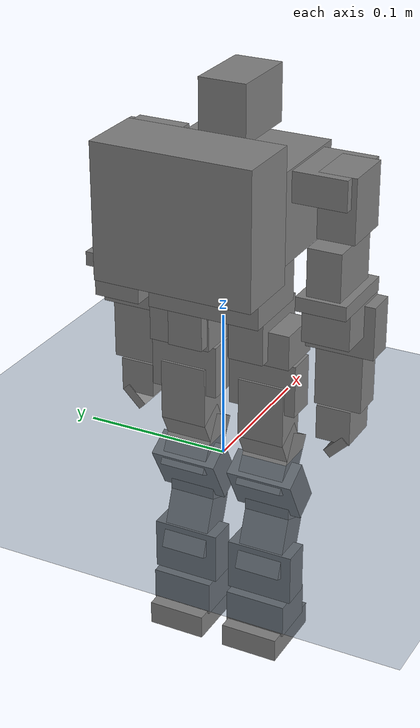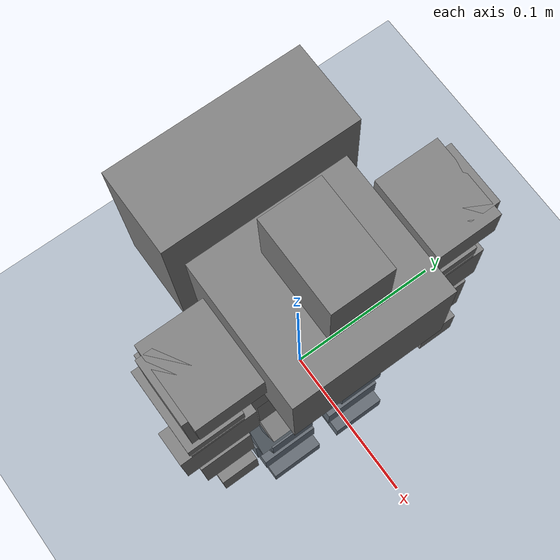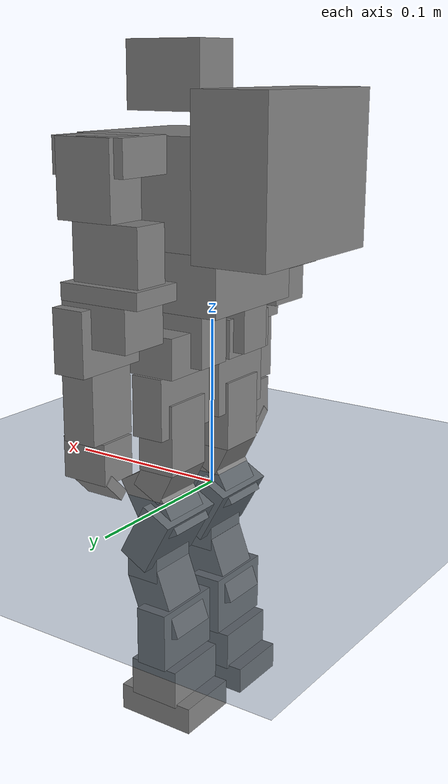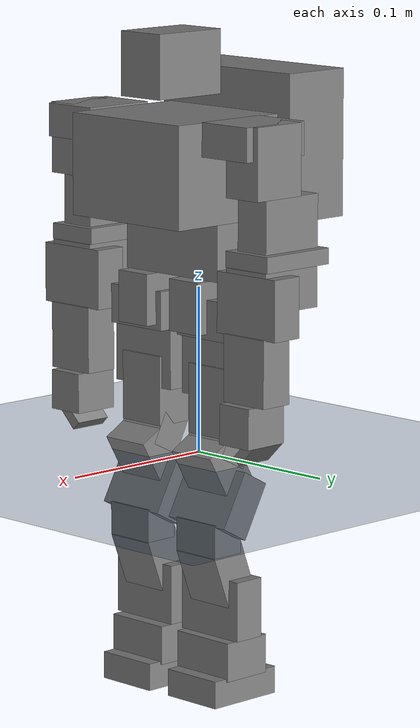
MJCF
<mujoco model="Kondo_4">

    <compiler angle="radian"/>
    <size njmax="5000" nuserdata="100" nconmax="999"/>
    <option integrator="RK4" timestep="0.001" jacobian="dense" cone="elliptic" impratio="1" solver="Newton" tolerance="1e-15" noslip_iterations="0" noslip_tolerance="1e-6">
        <flag energy="enable" fwdinv="enable" />
    </option>

    <asset>
        <texture type="skybox" builtin="gradient" rgb1=".3 .5 .7" rgb2="0 0 0" width="512" height="512"/>
        <texture name="body" type="cube" builtin="flat" mark="cross" width="127" height="1278"
             rgb1="0.8 0.6 0.4" rgb2="0.8 0.6 0.4" markrgb="1 1 1" random="0.01"/>
        <material name="body" texture="body" texuniform="true" rgba="0.8 0.6 .4 1"/>
        <texture name="grid" type="2d" builtin="checker" width="512" height="512" rgb1=".1 .2 .3" rgb2=".2 .3 .4"/>
        <material name="grid" texture="grid" texrepeat="1 1" texuniform="true" reflectance=".2"/>
    </asset>

    <worldbody>
        <geom name="floor" pos = "0 0 0" size="0 0 .05" type="plane" material="grid" condim="3"/>

        <light name="spotlight1" mode="targetbodycom" target="Head"
           diffuse=".8 .8 .8" specular="0.3 0.3 0.3" pos="-10 10 3" cutoff="10"/>
        <light name="spotlight2" mode="targetbodycom" target="Torso"
           diffuse=".8 .8 .8" specular="0.3 0.3 0.3" pos="20 5 3" cutoff="10"/>

        <camera name="mycam1" pos="1.530 -0.516 0.147" xyaxes="0.282 0.959 -0.000 -0.161 0.047 0.986"/>
        <camera name="mycam2" pos="2.360 0.558 0.298" xyaxes="-0.184 0.983 0.000 -0.178 -0.033 0.984"/>
<!--        quat="0.707 0 0.707 0"-->
        <body name="Waist" pos="0 0 0.15"  >
            <joint name="floating_base_joint" type="free"/>
            <geom size="0.02525 0.038 0.018" pos="-0.00275 0 -0.022" type="box"/>

            <site name="waist_site" type="sphere" size="0.0025" pos="0.01 0 -0.05" rgba="1 0 0 1" />

            <body name="LeftHipBracket" pos="0.00875 0.02145 -0.03995">
                <joint name="Left_Hip_Yaw" pos="0 0 0" axis="0 0 1" limited="true" range="-2.356 2.356" frictionloss="0.12" />
                <geom size="0.02350 0.012 0.0155" pos="0 -0.0015 -0.0155" type="box"/>

                <body name="LeftPelvis" pos="0 -0.00455 -0.02235">
                    <joint name="Left_Hip_Roll" pos="0 0 0" axis="1 0 0" limited="true" range="-2.356 2.356" frictionloss="0.12" />
                    <geom size="0.016 0.02125 0.01175" pos="0 0.01125 -0.00025" type="box"/>
                    <geom size="0.01 0.02325 0.018" pos="0 0.01125 -0.03" type="box"/>

                    <body name="LeftThigh" pos="-0.0008 0.0113 -0.0387">
                        <joint name="Left_Hip_Pitch" pos="0 0 0" axis="0 1 0" limited="true" range="-2.356 2.356" frictionloss="0.12" />
                        <geom size="0.01175 0.016 0.021" pos="0.00075 0 -0.011" type="box"/>
                        <geom size="0.016 0.021 0.01125" pos="0.006 0 -0.054" quat="0.355262 0.611381 0.61138 0.355269" type="box"/>
                        <geom size="0.016 0.01 0.0108" pos="0.003 0 -0.037" quat="0.164913 0.687606 0.687607 0.164921" type="box"/>

                        <body name="LeftShin" pos="0.00015 0 -0.06375">
                            <joint name="Left_Knee_Pitch" pos="0 0 0" axis="0 1 0" limited="true" range="-2.356 2.356" frictionloss="0.12" />
                            <geom size="0.02325 0.018 0.01" pos="0.00425 0 -0.008" quat="0.608155 0.360758 0.360752 0.60816" type="box"/>
                            <geom size="0.016 0.021 0.0115" pos="0.004 0 -0.054" quat="0.402402 0.581438 0.581436 0.40241" type="box"/>
                            <geom size="0.0108 0.016 0.01" pos="0.0115 0 -0.028" type="box"/>

                            <body name="LeftAnkle" pos="0.0003 -0.0002 -0.06435">
                                <joint name="Left_Ankle_Pitch" pos="0 0 0" axis="0 1 0" limited="true" range="-2.356 2.356" frictionloss="0.12" />
                                <geom size="0.016 0.02125 0.01175" pos="0 0 -0.037" type="box"/>
                                <geom size="0.01 0.02325 0.018" pos="0 0 -0.007" type="box"/>

                                <body name="LeftFoot" pos="0 -0.01125 -0.037">
                                    <joint name="Left_Ankle_Roll" pos="0 0 0" axis="1 0 0" limited="true" range="-2.356 2.356" frictionloss="0.12" />
                                    <geom size="0.025 0.02 0.00825" pos="0 0.01125 -0.01825" type="box"/>

                                    <site name="left_foot_site" type="sphere" size="0.0025" pos="0 0.0125 -0.02655" rgba="1 0 0 1" />
                                </body>
                            </body>
                        </body>
                    </body>
                </body>
            </body>

            <body name="RightHipBracket" pos="0.00875 -0.02145 -0.03995">
                <joint name="Right_Hip_Yaw" pos="0 0 0" axis="0 0 1" limited="true" range="-2.356 2.356" frictionloss="0.12" />
                <geom size="0.02350 0.012 0.0155" pos="0 -0.0015 -0.0155" type="box"/>

                <body name="RightPelvis" pos="0 0.00455 -0.02235">
                    <joint name="Right_Hip_Roll" pos="0 0 0" axis="1 0 0" limited="true" range="-2.356 2.356" frictionloss="0.12" />
                    <geom size="0.016 0.02125 0.01175" pos="0 -0.01125 -0.00025" type="box"/>
                    <geom size="0.01 0.02325 0.018" pos="0 -0.01125 -0.03" type="box"/>

                    <body name="RightThigh" pos="-0.0008 -0.0113 -0.0387">
                        <joint name="Right_Hip_Pitch" pos="0 0 0" axis="0 1 0" limited="true" range="-2.356 2.356" frictionloss="0.12" />
                        <geom size="0.01175 0.016 0.021" pos="0.00075 0 -0.011" type="box"/>
                        <geom size="0.016 0.021 0.01125" pos="0.006 0 -0.054" quat="0.355262 0.611381 0.61138 0.355269" type="box"/>
                        <geom size="0.016 0.01 0.0108" pos="0.003 0 -0.037" quat="0.164913 0.687606 0.687607 0.164921" type="box"/>

                        <body name="RightShin" pos="0.00015 0 -0.06375">
                            <joint name="Right_Knee_Pitch" pos="0 0 0" axis="0 1 0" limited="true" range="-2.356 2.356" frictionloss="0.12" />
                            <geom size="0.02325 0.018 0.01" pos="0.00425 0 -0.008" quat="0.608155 0.360758 0.360752 0.60816" type="box"/>
                            <geom size="0.016 0.021 0.0115" pos="0.004 0 -0.054" quat="0.402402 0.581438 0.581436 0.40241" type="box"/>
                            <geom size="0.0108 0.016 0.01" pos="0.0115 0 -0.028" type="box"/>

                            <body name="RightAnkle" pos="0.0003 0.0002 -0.06435">
                                <joint name="Right_Ankle_Pitch" pos="0 0 0" axis="0 1 0" limited="true" range="-2.356 2.356" frictionloss="0.12" />
                                <geom size="0.016 0.02125 0.01175" pos="0 0 -0.0375" type="box"/>
                                <geom size="0.01 0.02325 0.018" pos="0 0 -0.007" type="box"/>

                                <body name="RightFoot" pos="0 0.01125 -0.0375">
                                    <joint name="Right_Ankle_Roll" pos="0 0 0" axis="1 0 0" limited="true" range="-2.356 2.356" frictionloss="0.12" />
                                    <geom size="0.025 0.02 0.00825" pos="0 -0.01125 -0.01825" type="box"/>

                                    <site name="right_foot_site" type="sphere" size="0.0025" pos="0 -0.0125 -0.02655" rgba="1 0 0 1" />
                                </body>
                            </body>
                        </body>
                    </body>
                </body>
            </body>

            <body name="Torso" pos="0.02425 0 0.04715" >
                <joint name="Waist_Yaw" pos="0 0 0" axis="0 0 1" limited="true" range="-2.356 2.356" frictionloss="0.12" />
                <geom size="0.04025 0.0445 0.03025" pos="-0.00475 0 -0.022" type="box"/>
                <geom size="0.02275 0.0525 0.044" pos="-0.06925 0 -0.012" type="box"/>

                <body name="Head" pos="-0.00395 0 0.0134">
                    <joint name="Neck_Yaw" pos="0 0 0" axis="0 0 1" limited="true" range="-2.356 2.356" frictionloss="0.12" />
                    <geom size="0.02475 0.016 0.019" pos="0.00225 0 0.02475" type="box"/>
                </body>

                <body name="LeftShoulderBracket" pos="-0.0041 0.04725 -0.0009">
                    <joint name="Left_Shoulder_Pitch" pos="0 0 0" axis="0 1 0" limited="true" range="-2.356 2.356" frictionloss="0.12" />
                    <geom size="0.02325 0.018 0.01" pos="0 0.0175 0" type="box"/>

                    <body name="LeftUpperArm" pos="0 0.02645 0">
                        <joint name="Left_Shoulder_Roll" pos="0 0 0" axis="1 0 0" limited="true" range="-2.356 2.356" frictionloss="0.12" />
                        <geom size="0.017775 0.0125 0.02125" pos="0.00025 0 -0.01125" type="box"/>
                        <geom size="0.02125 0.01125 0.015775" pos="-0.01175 -0.00025 -0.04825" type="box"/>
                        <geom size="0.02525 0.016775 0.00475" pos="-0.01125 -0.00025 -0.06875" type="box"/>

                        <body name="LeftElbowBracket" pos="0.00225 -0.00025 -0.07365">
                            <joint name="Left_Arm_Yaw" pos="0 0 0" axis="0 0 1" limited="true" range="-2.356 2.356" frictionloss="0.12" />
                            <geom size="0.0211 0.016 0.012" pos="-0.009 0 -0.012" type="box"/>

                            <body name="LeftForeArm" pos="0.0022 0 -0.0117">
                                <joint name="Left_Elbow_Pitch" pos="0 0 0" axis="0 1 0" limited="true" range="-2.356 2.356" frictionloss="0.12" />
                                <geom size="0.01 0.02325 0.018" pos="0 0 -0.009" type="box"/>
                                <geom size="0.0105 0.016 0.02" pos="0.001 0 -0.0465" type="box"/>
                                <geom size="0.0145 0.01175 0.012" pos="0.003 -0.00175 -0.0785" type="box"/>
                                <geom size="0.00325 0.00875 0.012" pos="0 0.001 -0.094" quat="0.653278 0.270601 0.653282 0.270602" type="box"/>
                            </body>
                        </body>
                    </body>
                </body>

                <body name="RightShoulderBracket" pos="-0.0041 -0.0475 -0.0009">
                    <joint name="Right_Shoulder_Pitch" pos="0 0 0" axis="0 1 0" limited="true" range="-2.356 2.356" frictionloss="0.12" />
                    <geom size="0.02325 0.018 0.01" pos="0 -0.0175 0" type="box"/>

                    <body name="RightUpperArm" pos="0 -0.02645 0">
                        <joint name="Right_Shoulder_Roll" pos="0 0 0" axis="1 0 0" limited="true" range="-2.356 2.356" frictionloss="0.12" />
                        <geom size="0.017775 0.0125 0.02125" pos="0.00025 0 -0.01125" type="box"/>
                        <geom size="0.02125 0.01125 0.015775" pos="-0.01175 0.00025 -0.04825" type="box"/>
                        <geom size="0.02525 0.016775 0.00475" pos="-0.01125 0.00025 -0.06875" type="box"/>

                        <body name="RightElbowBracket" pos="0.00225 0.00025 -0.07365">
                            <joint name="Right_Arm_Yaw" pos="0 0 0" axis="0 0 1" limited="true" range="-2.356 2.356" frictionloss="0.12" />
                            <geom size="0.0211 0.016 0.012" pos="-0.009 0 -0.012" type="box"/>

                            <body name="RightForeArm" pos="0.0022 0 -0.0117">
                                <joint name="Right_Elbow_Pitch" pos="0 0 0" axis="0 1 0" limited="true" range="-2.356 2.356" frictionloss="0.12" />
                                <geom size="0.01 0.02325 0.018" pos="0 0 -0.009" type="box"/>
                                <geom size="0.0105 0.016 0.02" pos="0.001 0 -0.0465" type="box"/>
                                <geom size="0.0145 0.01175 0.012" pos="0.003 0.00175 -0.0785" type="box"/>
                                <geom size="0.00325 0.00875 0.012" pos="0 -0.001 -0.094" quat="0.270593 0.653284 0.270596 0.653282" type="box"/>
                            </body>
                        </body>
                    </body>
                </body>
            </body>
        </body>
    </worldbody>

    <actuator>
        <motor name="LHY" joint="Left_Hip_Yaw"/>
        <motor name="LHR" joint="Left_Hip_Roll"/>
        <motor name="LHP" joint="Left_Hip_Pitch"/>
        <motor name="LKP" joint="Left_Knee_Pitch"/>
        <motor name="LAP" joint="Left_Ankle_Pitch"/>
        <motor name="LAR" joint="Left_Ankle_Roll"/>

        <motor name="RHY" joint="Right_Hip_Yaw"/>
        <motor name="RHR" joint="Right_Hip_Roll"/>
        <motor name="RHP" joint="Right_Hip_Pitch"/>
        <motor name="RKP" joint="Right_Knee_Pitch"/>
        <motor name="RAP" joint="Right_Ankle_Pitch"/>
        <motor name="RAR" joint="Right_Ankle_Roll"/>

        <motor name="LSP" joint="Left_Shoulder_Pitch"/>
        <motor name="LSR" joint="Left_Shoulder_Roll"/>
        <motor name="LAY" joint="Left_Arm_Yaw"/>
        <motor name="LEP" joint="Left_Elbow_Pitch"/>

        <motor name="RSP" joint="Right_Shoulder_Pitch"/>
        <motor name="RSR" joint="Right_Shoulder_Roll"/>
        <motor name="RAY" joint="Right_Arm_Yaw"/>
        <motor name="REP" joint="Right_Elbow_Pitch"/>

        <motor name="WY" joint="Waist_Yaw"/>
        <motor name="NY" joint="Neck_Yaw"/>
    </actuator>

    <sensor>
        <framepos name="waist_site_pos" objtype="site" objname="waist_site"/>
        <framequat name="waist_site_quat" objtype="site" objname="waist_site"/>

        <framepos name="left_foot_site_pos" objtype="site" objname="left_foot_site"/>
        <framequat name="left_foot_site_quat" objtype="site" objname="left_foot_site"/>

        <framepos name="right_foot_site_pos" objtype="site" objname="right_foot_site"/>
        <framequat name="right_foot_site_quat" objtype="site" objname="right_foot_site"/>

        <accelerometer name="torso_acc" site="waist_site"/>
        <gyro name="toso_gyro" site="waist_site"/>

        <accelerometer name="left_foot_acc" site="left_foot_site"/>
        <gyro name="left_foot_gyro" site="left_foot_site"/>

        <accelerometer name="right_foot_acc" site="right_foot_site"/>
        <gyro name="right_foot_gyro" site="right_foot_site"/>

        <subtreecom name="COM" body="Waist"/>
        <subtreelinvel name="COMvel" body="Waist"/>

        <subtreeangmom name="Hg" body="Waist"/>
    </sensor>

    <equality>
        <joint name="Neck_Yaw_lock" joint1="Neck_Yaw" polycoef="0 0 0 0 0"/>
        <joint name="Waist_Yaw_lock" joint1="Waist_Yaw" polycoef="0 0 0 0 0"/>

        <joint name="Left_Hip_Yaw_lock" joint1="Left_Hip_Yaw" polycoef="0 0 0 0 0"/>
        <joint name="Right_Hip_Yaw_lock" joint1="Right_Hip_Yaw" polycoef="0 0 0 0 0"/>

        <joint name="Left_Hip_Roll_lock" joint1="Left_Hip_Roll" polycoef="0 0 0 0 0"/>
        <joint name="Right_Hip_Roll_lock" joint1="Right_Hip_Roll" polycoef="-0.174 0 0 0 0"/>

        <joint name="Left_Hip_Pitch_lock" joint1="Left_Hip_Pitch" polycoef="-0.707 0 0 0 0"/>
        <joint name="Right_Hip_Pitch_lock" joint1="Right_Hip_Pitch" polycoef="0 0 0 0 0"/>

        <joint name="Left_Knee_Pitch_lock" joint1="Left_Knee_Pitch" polycoef="1.5 0 0 0 0"/>
        <joint name="Right_Knee_Pitch_lock" joint1="Right_Knee_Pitch" polycoef="0 0 0 0 0"/>

        <joint name="Left_Ankle_Pitch_lock" joint1="Left_Ankle_Pitch" polycoef="0 0 0 0 0"/>
        <joint name="Right_Ankle_Pitch_lock" joint1="Right_Ankle_Pitch" polycoef="-.057 0 0 0 0"/>

        <joint name="Left_Ankle_Roll_lock" joint1="Left_Ankle_Roll" polycoef="0 0 0 0 0"/>
        <joint name="Right_Ankle_Roll_lock" joint1="Right_Ankle_Roll" polycoef="-0.104 0 0 0 0"/>

        <joint name="Left_Shoulder_Pitch_lock" joint1="Left_Shoulder_Pitch" polycoef="-0.63612 0 0 0 0"/>
        <joint name="Right_Shoulder_Pitch_lock" joint1="Right_Shoulder_Pitch" polycoef="-0.7068 0 0 0 0"/>

        <joint name="Left_Shoulder_Roll_lock" joint1="Left_Shoulder_Roll" polycoef="-0.04712 0 0 0 0"/>
        <joint name="Right_Shoulder_Roll_lock" joint1="Right_Shoulder_Roll" polycoef="-0.04712 0 0 0 0"/>

        <joint name="Left_Arm_Yaw_lock" joint1="Left_Arm_Yaw" polycoef="-0.37696 0 0 0 0"/>
        <joint name="Right_Arm_Yaw_lock" joint1="Right_Arm_Yaw" polycoef="0.98952 0 0 0 0"/>

        <joint name="Left_Elbow_Pitch_lock" joint1="Left_Elbow_Pitch" polycoef="-1.67276 0 0 0 0"/>
        <joint name="Right_Elbow_Pitch_lock" joint1="Right_Elbow_Pitch" polycoef="-1.46072 0 0 0 0"/>
    </equality>

    <keyframe>
    <key name="balanced_standing" qpos='
        0 0 0.28
        1 0 0 0
        0 0 0 0 0 0
        0 0 0 0 0 0
        0 0
        0 0 0 0
        0 0 0 0'/>
</keyframe>

    <visual>
        <global offwidth="1280" offheight="720"/>
    </visual>

</mujoco>
